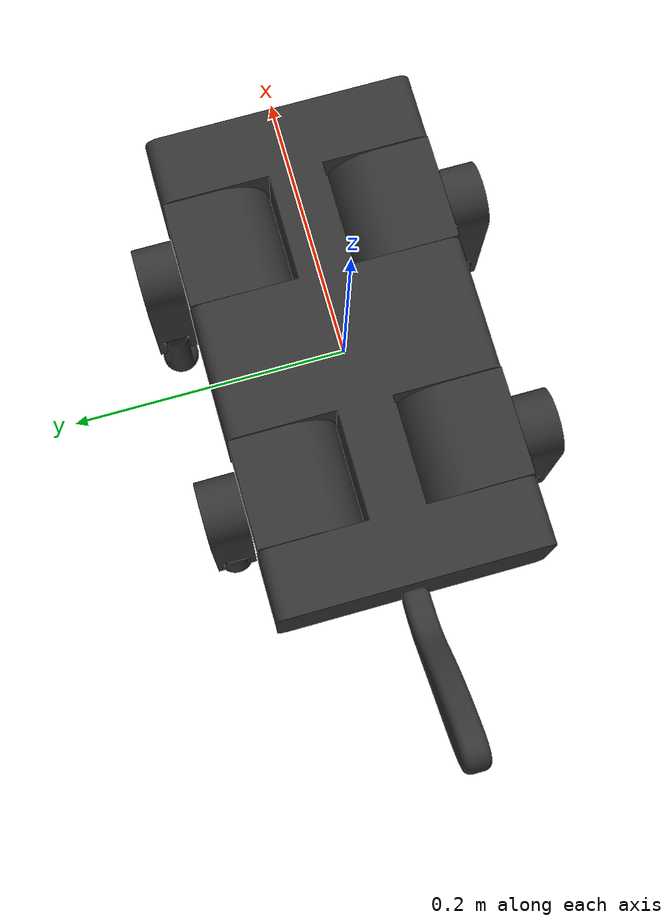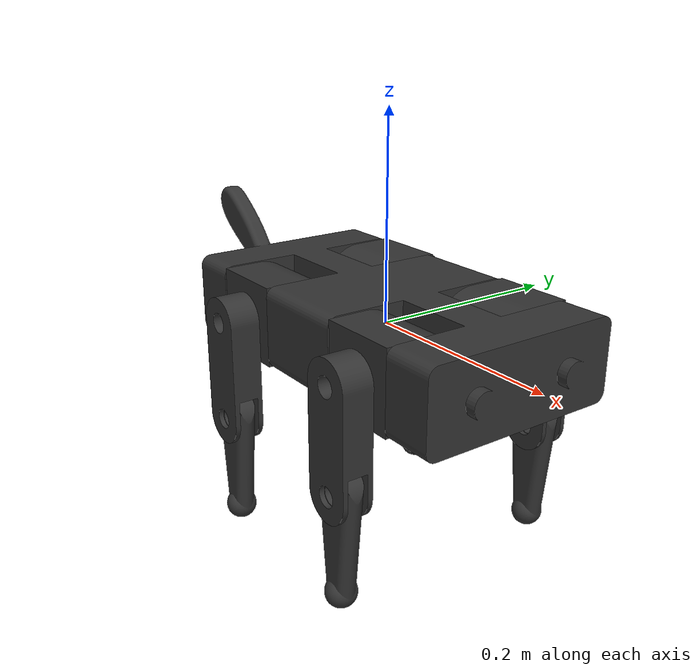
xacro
<?xml version="1.0" ?>
<robot name="quad_robot" xmlns:xacro="http://www.ros.org/wiki/xacro">

<xacro:include filename="$(find quad_robot_description)/urdf/materials.xacro" />
<xacro:include filename="$(find quad_robot_description)/urdf/quad_robot.trans" />
<xacro:include filename="$(find quad_robot_description)/urdf/quad_robot.gazebo" />
<xacro:include filename="$(find quad_robot_description)/urdf/quad_robot_description.xacro" />
<xacro:quad_robot_description main_color="grey" sub_color="white" />

<!-- Import MantaRobot ros2_control description -->
<!-- TODO effort controller なら滑らずにモデルを使用できる -->
<xacro:include filename="$(find quad_robot_description)/ros2_control/quad_robot_ros2_effort_control.xacro" />
<xacro:quad_robot_ros2_control name="quad_robot" />

</robot>

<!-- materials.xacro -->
<robot name="mb3" xmlns:xacro="http://www.ros.org/wiki/xacro" >

  <material name="silver">
    <color rgba="0.700 0.700 0.700 1.000"/>
  </material>

  <material name="black">
    <color rgba="0.0 0.0 0.0 1.0"/>
  </material>

  <material name="blue">
    <color rgba="0.0 0.0 0.8 1.0"/>
  </material>

  <material name="skyblue">
    <color rgba="${0/255} ${226/255} ${232/255} 1.0"/>
  </material>

  <material name="green">
    <color rgba="0.0 0.8 0.0 1.0"/>
  </material>

  <material name="grey">
    <color rgba="0.2 0.2 0.2 1.0"/>
  </material>

  <material name="orange">
    <color rgba="${255/255} ${108/255} ${10/255} 1.0"/>
  </material>

  <material name="brown">
    <color rgba="${222/255} ${207/255} ${195/255} 1.0"/>
  </material>

  <material name="red">
    <color rgba="0.8 0.0 0.0 1.0"/>
  </material>

  <material name="yellow">
    <color rgba="1.0 1.0 0.0 1.0"/>
  </material>

  <material name="white">
    <color rgba="1.0 1.0 1.0 1.0"/>
  </material>

</robot>

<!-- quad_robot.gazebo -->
<robot name="quad_robot" xmlns:xacro="http://www.ros.org/wiki/xacro" >

<xacro:property name="body_color" value="Gazebo/FlatBlack" />
<xacro:property name="sub_color" value="Gazebo/Silver" />

<!-- ros_control plugin -->
<gazebo>
  <plugin filename="libgazebo_ros2_control.so" name="gazebo_ros2_control">
    <robot_param>robot_description</robot_param>
    <robot_param_node>robot_state_publisher</robot_param_node>
    <parameters>$(find quad_robot_gazebo)/config/quad_robot_effort_controller.yaml</parameters>
  </plugin>
</gazebo>

<gazebo>
  <plugin name="p3d_base_controller" filename="libgazebo_ros_p3d.so">
    <ros>
      <argument>odom:=odom/ground_truth</argument>
    </ros>

    <body_name>base_link</body_name>
    <frame_name>world</frame_name>
    <update_rate>10.0</update_rate>
    <xyz_offset>0 0 0</xyz_offset>
    <rpy_offset>0 0 0</rpy_offset>
    <gaussian_noise>0.01</gaussian_noise>
  </plugin>
</gazebo>

<gazebo reference="base_link">
  <material>${body_color}</material>
</gazebo>

<gazebo reference="rf_hip_link">
  <material>${body_color}</material>
</gazebo>

<gazebo reference="rh_hip_link">
  <material>${body_color}</material>
</gazebo>

<gazebo reference="lf_hip_link">
  <material>${body_color}</material>
</gazebo>

<gazebo reference="lh_hip_link">
  <material>${body_color}</material>
</gazebo>

<gazebo reference="rf_upper_leg_link">
  <material>${body_color}</material>
</gazebo>

<gazebo reference="rh_upper_leg_link">
  <material>${body_color}</material>
</gazebo>

<gazebo reference="lf_upper_leg_link">
  <material>${body_color}</material>
</gazebo>

<gazebo reference="lh_upper_leg_link">
  <material>${body_color}</material>
</gazebo>

<gazebo reference="rf_lower_leg_link">
  <material>${body_color}</material>
  <!-- mu上げると滑る、下げると止まる -->
  <!-- kp上げると滑る -->
  <!-- kd上げると地面に練り込む -->
  <!-- mindepth 上げると沈む -->
  <kp>1e5</kp>
  <kd>100</kd>
  <mu1>0.8</mu1>
  <mu2>0.8</mu2>
  <fdir1>1 0 0</fdir1>
  <maxVel>0.1</maxVel>
  <minDepth>0.001</minDepth>
</gazebo>

<gazebo reference="rh_lower_leg_link">
  <material>${body_color}</material>
  <kp>1e5</kp>
  <kd>100</kd>
  <mu1>0.8</mu1>
  <mu2>0.8</mu2>
  <fdir1>1 0 0</fdir1>
  <maxVel>0.1</maxVel>
  <minDepth>0.001</minDepth>
</gazebo>

<gazebo reference="lf_lower_leg_link">
  <material>${body_color}</material>
  <kp>1e5</kp>
  <kd>100</kd>
  <mu1>0.8</mu1>
  <mu2>0.8</mu2>
  <fdir1>1 0 0</fdir1>
  <maxVel>0.1</maxVel>
  <minDepth>0.001</minDepth>
</gazebo>

<gazebo reference="lh_lower_leg_link">
  <material>${body_color}</material>
  <kp>1e5</kp>
  <kd>100</kd>
  <mu1>0.8</mu1>
  <mu2>0.8</mu2>
  <fdir1>1 0 0</fdir1>
  <maxVel>0.1</maxVel>
  <minDepth>0.001</minDepth>
</gazebo>

</robot>

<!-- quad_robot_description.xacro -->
<robot name="quad_robot" xmlns:xacro="http://www.ros.org/wiki/xacro">

<!-- TODO inertiaのoriginとか触ると、場所変わるのでNG -->

<xacro:include filename="$(find champ_description)/urdf/properties.urdf.xacro" />

<xacro:macro name="quad_robot_description" params="main_color sub_color">
<xacro:property name="lower_leg_to_foot_distance" value="0.11" />

  <!-- TODO add imu_link -->
  <link name="imu_link">
    <inertial>
      <mass value="0.001"/>
      <origin rpy="0 0 0" xyz="0 0 0"/>
      <inertia ixx="1e-09" ixy="0.0" ixz="0.0" iyy="1e-09" iyz="0.0" izz="1e-09"/>
    </inertial>
  </link>
  <joint name="imu_joint" type="fixed">
    <parent link="base_link"/>
    <child link="imu_link"/>
  </joint>

  <!-- TODO delete base_link inertial tag -->
  <link name="base_link">
    <visual>
      <origin xyz="0 0 0" rpy="0 0 0"/>
      <geometry>
        <mesh filename="file://$(find quad_robot_description)/meshes/base_link.stl" scale="0.001 0.001 0.001"/>
      </geometry>
      <material name="${main_color}"/>
    </visual>
    <collision>
      <origin xyz="0 0 0" rpy="0 0 0"/>
      <geometry>
        <mesh filename="file://$(find quad_robot_description)/meshes/base_link.stl" scale="0.001 0.001 0.001"/>
      </geometry>
    </collision>
  </link>
  <!-- TODO divide base_link into inertia link -->
  <link name="base_inertia">
    <inertial>
      <origin xyz="0 0 0"/>
      <mass value="3.949377918410707"/>
      <inertia ixx="0.013212" iyy="0.055202" izz="0.063976" ixy="0.0" iyz="0.0" ixz="0.0"/>
    </inertial>
  </link>
  <joint name="base_link_to_base_inertia" type="fixed">
    <parent link="base_link"/>
    <child link="base_inertia"/>
    <origin rpy="0 0 0" xyz="0 0 0"/>
  </joint>

  <!-- TODO add foot link -->
  <link name="rf_foot_link" />
  <joint name="rf_foot_joint" type="fixed">
    <parent link="rf_lower_leg_link" />
    <child link="rf_foot_link" />
    <origin xyz="0 0 -${lower_leg_to_foot_distance}" rpy="0 0 0" />
  </joint>
  <link name="rh_foot_link" />
  <joint name="rh_foot_joint" type="fixed">
    <parent link="rh_lower_leg_link" />
    <child link="rh_foot_link" />
    <origin xyz="0 0 -${lower_leg_to_foot_distance}" rpy="0 0 0" />
  </joint>
  <link name="lf_foot_link" />
  <joint name="lf_foot_joint" type="fixed">
    <parent link="lf_lower_leg_link" />
    <child link="lf_foot_link" />
    <origin xyz="0 0 -${lower_leg_to_foot_distance}" rpy="0 0 0" />
  </joint>
  <link name="lh_foot_link" />
  <joint name="lh_foot_joint" type="fixed">
    <parent link="lh_lower_leg_link" />
    <child link="lh_foot_link" />
    <origin xyz="0 0 -${lower_leg_to_foot_distance}" rpy="0 0 0" />
  </joint>

<link name="rf_hip_link">
  <inertial>
    <origin xyz="0.04000000000000005 -0.0033883605352012514 1.815433672304822e-17" rpy="0 0 0"/>
    <mass value="0.418842162082933"/>
    <inertia ixx="0.000398" iyy="0.000427" izz="0.000416" ixy="0.0" iyz="-0.0" ixz="-0.0"/>
  </inertial>
  <visual>
    <origin xyz="-0.05 0.06 -0.0" rpy="0 0 0"/>
    <geometry>
      <mesh filename="file://$(find quad_robot_description)/meshes/rf_hip_link.stl" scale="0.001 0.001 0.001"/>
    </geometry>
    <material name="${main_color}"/>
  </visual>
  <collision>
    <origin xyz="-0.05 0.06 -0.0" rpy="0 0 0"/>
    <geometry>
      <mesh filename="file://$(find quad_robot_description)/meshes/rf_hip_link.stl" scale="0.001 0.001 0.001"/>
    </geometry>
  </collision>
</link>

<link name="rh_hip_link">
  <inertial>
    <origin xyz="-0.039999999999999966 -0.0033883605352011126 -2.885909027996524e-18" rpy="0 0 0"/>
    <mass value="0.418842162082933"/>
    <inertia ixx="0.000398" iyy="0.000427" izz="0.000416" ixy="0.0" iyz="0.0" ixz="0.0"/>
  </inertial>
  <visual>
    <origin xyz="0.05 0.06 -0.0" rpy="0 0 0"/>
    <geometry>
      <mesh filename="file://$(find quad_robot_description)/meshes/rh_hip_link.stl" scale="0.001 0.001 0.001"/>
    </geometry>
    <material name="${main_color}"/>
  </visual>
  <collision>
    <origin xyz="0.05 0.06 -0.0" rpy="0 0 0"/>
    <geometry>
      <mesh filename="file://$(find quad_robot_description)/meshes/rh_hip_link.stl" scale="0.001 0.001 0.001"/>
    </geometry>
  </collision>
</link>

<link name="lf_hip_link">
  <inertial>
    <origin xyz="0.04000000000012972 0.0033883605352012652 8.881784197001253e-18" rpy="0 0 0"/>
    <mass value="0.41884216208293407"/>
    <inertia ixx="0.000398" iyy="0.000427" izz="0.000416" ixy="0.0" iyz="-0.0" ixz="0.0"/>
  </inertial>
  <visual>
    <origin xyz="-0.05 -0.06 -0.0" rpy="0 0 0"/>
    <geometry>
      <mesh filename="file://$(find quad_robot_description)/meshes/lf_hip_link.stl" scale="0.001 0.001 0.001"/>
    </geometry>
    <material name="${main_color}"/>
  </visual>
  <collision>
    <origin xyz="-0.05 -0.06 -0.0" rpy="0 0 0"/>
    <geometry>
      <mesh filename="file://$(find quad_robot_description)/meshes/lf_hip_link.stl" scale="0.001 0.001 0.001"/>
    </geometry>
  </collision>
</link>

<link name="lh_hip_link">
  <inertial>
    <origin xyz="-0.04000000000000006 0.003388360535201196 9.766968170619275e-18" rpy="0 0 0"/>
    <mass value="0.418842162082933"/>
    <inertia ixx="0.000398" iyy="0.000427" izz="0.000416" ixy="0.0" iyz="-0.0" ixz="0.0"/>
  </inertial>
  <visual>
    <origin xyz="0.05 -0.06 -0.0" rpy="0 0 0"/>
    <geometry>
      <mesh filename="file://$(find quad_robot_description)/meshes/lh_hip_link.stl" scale="0.001 0.001 0.001"/>
    </geometry>
    <material name="${main_color}"/>
  </visual>
  <collision>
    <origin xyz="0.05 -0.06 -0.0" rpy="0 0 0"/>
    <geometry>
      <mesh filename="file://$(find quad_robot_description)/meshes/lh_hip_link.stl" scale="0.001 0.001 0.001"/>
    </geometry>
  </collision>
</link>

<link name="rf_upper_leg_link">
  <inertial>
    <origin xyz="-8.652800698172314e-14 -0.01599999999999989 -0.038046278936919406" rpy="0 0 0"/>
    <mass value="0.16080574980884343"/>
    <inertia ixx="0.000206" iyy="0.000226" izz="4.8e-05" ixy="-0.0" iyz="0.0" ixz="0.0"/>
  </inertial>
  <visual>
    <origin xyz="-0.09 0.099 -0.0" rpy="0 0 0"/>
    <geometry>
      <mesh filename="file://$(find quad_robot_description)/meshes/rf_upper_leg_link.stl" scale="0.001 0.001 0.001"/>
    </geometry>
    <material name="${main_color}"/>
  </visual>
  <collision>
    <origin xyz="-0.09 0.099 -0.0" rpy="0 0 0"/>
    <geometry>
      <mesh filename="file://$(find quad_robot_description)/meshes/rf_upper_leg_link.stl" scale="0.001 0.001 0.001"/>
    </geometry>
  </collision>
</link>

<link name="rh_upper_leg_link">
  <inertial>
    <origin xyz="-8.662515149637784e-14 -0.015999999999999626 -0.03804627893691973" rpy="0 0 0"/>
    <mass value="0.16080574980884343"/>
    <inertia ixx="0.000206" iyy="0.000226" izz="4.8e-05" ixy="-0.0" iyz="0.0" ixz="0.0"/>
  </inertial>
  <visual>
    <origin xyz="0.09 0.099 0.0" rpy="0 0 0"/>
    <geometry>
      <mesh filename="file://$(find quad_robot_description)/meshes/rh_upper_leg_link.stl" scale="0.001 0.001 0.001"/>
    </geometry>
    <material name="${main_color}"/>
  </visual>
  <collision>
    <origin xyz="0.09 0.099 0.0" rpy="0 0 0"/>
    <geometry>
      <mesh filename="file://$(find quad_robot_description)/meshes/rh_upper_leg_link.stl" scale="0.001 0.001 0.001"/>
    </geometry>
  </collision>
</link>

<link name="lf_upper_leg_link">
  <inertial>
    <origin xyz="-8.66806626476091e-14 0.016000000000000167 -0.03804627893691959" rpy="0 0 0"/>
    <mass value="0.16080574980884343"/>
    <inertia ixx="0.000206" iyy="0.000226" izz="4.8e-05" ixy="0.0" iyz="0.0" ixz="0.0"/>
  </inertial>
  <visual>
    <origin xyz="-0.09 -0.099 0.0" rpy="0 0 0"/>
    <geometry>
      <mesh filename="file://$(find quad_robot_description)/meshes/lf_upper_leg_link.stl" scale="0.001 0.001 0.001"/>
    </geometry>
    <material name="${main_color}"/>
  </visual>
  <collision>
    <origin xyz="-0.09 -0.099 0.0" rpy="0 0 0"/>
    <geometry>
      <mesh filename="file://$(find quad_robot_description)/meshes/lf_upper_leg_link.stl" scale="0.001 0.001 0.001"/>
    </geometry>
  </collision>
</link>

<link name="lh_upper_leg_link">
  <inertial>
    <origin xyz="-8.67778071622638e-14 0.015999999999999848 -0.038046278936919455" rpy="0 0 0"/>
    <mass value="0.16080574980884343"/>
    <inertia ixx="0.000206" iyy="0.000226" izz="4.8e-05" ixy="-0.0" iyz="0.0" ixz="0.0"/>
  </inertial>
  <visual>
    <origin xyz="0.09 -0.099 -0.0" rpy="0 0 0"/>
    <geometry>
      <mesh filename="file://$(find quad_robot_description)/meshes/lh_upper_leg_link.stl" scale="0.001 0.001 0.001"/>
    </geometry>
    <material name="${main_color}"/>
  </visual>
  <collision>
    <origin xyz="0.09 -0.099 -0.0" rpy="0 0 0"/>
    <geometry>
      <mesh filename="file://$(find quad_robot_description)/meshes/lh_upper_leg_link.stl" scale="0.001 0.001 0.001"/>
    </geometry>
  </collision>
</link>

<link name="rf_lower_leg_link">
  <inertial>
    <origin xyz="1.16579398690142e-07 -0.010000000167776815 -0.04255385923514293" rpy="0 0 0"/>
    <mass value="0.09412944960610932"/>
    <inertia ixx="0.00014" iyy="0.000149" izz="1.5e-05" ixy="0.0" iyz="0.0" ixz="-0.0"/>
  </inertial>
  <visual>
    <origin xyz="-0.09 0.105 0.1" rpy="0 0 0"/>
    <geometry>
      <mesh filename="file://$(find quad_robot_description)/meshes/rf_lower_leg_link.stl" scale="0.001 0.001 0.001"/>
    </geometry>
    <material name="${main_color}"/>
  </visual>
  <collision>
    <origin xyz="-0.09 0.105 0.1" rpy="0 0 0"/>
    <geometry>
      <mesh filename="file://$(find quad_robot_description)/meshes/rf_lower_leg_link.stl" scale="0.001 0.001 0.001"/>
    </geometry>
  </collision>
</link>

<link name="rh_lower_leg_link">
  <inertial>
    <origin xyz="1.1657939859299749e-07 -0.01000000016777669 -0.042553859235143515" rpy="0 0 0"/>
    <mass value="0.09412944960610932"/>
    <inertia ixx="0.00014" iyy="0.000149" izz="1.5e-05" ixy="0.0" iyz="0.0" ixz="-0.0"/>
  </inertial>
  <visual>
    <origin xyz="0.09 0.105 0.1" rpy="0 0 0"/>
    <geometry>
      <mesh filename="file://$(find quad_robot_description)/meshes/rh_lower_leg_link.stl" scale="0.001 0.001 0.001"/>
    </geometry>
    <material name="${main_color}"/>
  </visual>
  <collision>
    <origin xyz="0.09 0.105 0.1" rpy="0 0 0"/>
    <geometry>
      <mesh filename="file://$(find quad_robot_description)/meshes/rh_lower_leg_link.stl" scale="0.001 0.001 0.001"/>
    </geometry>
  </collision>
</link>

<link name="lf_lower_leg_link">
  <inertial>
    <origin xyz="1.1657939852360855e-07 0.009999999832223147 -0.04255385923514313" rpy="0 0 0"/>
    <mass value="0.09412944960610932"/>
    <inertia ixx="0.00014" iyy="0.000149" izz="1.5e-05" ixy="0.0" iyz="0.0" ixz="-0.0"/>
  </inertial>
  <visual>
    <origin xyz="-0.09 -0.105 0.1" rpy="0 0 0"/>
    <geometry>
      <mesh filename="file://$(find quad_robot_description)/meshes/lf_lower_leg_link.stl" scale="0.001 0.001 0.001"/>
    </geometry>
    <material name="${main_color}"/>
  </visual>
  <collision>
    <origin xyz="-0.09 -0.105 0.1" rpy="0 0 0"/>
    <geometry>
      <mesh filename="file://$(find quad_robot_description)/meshes/lf_lower_leg_link.stl" scale="0.001 0.001 0.001"/>
    </geometry>
  </collision>
</link>

<link name="lh_lower_leg_link">
  <inertial>
    <origin xyz="1.1657939841258624e-07 0.009999999832222856 -0.04255385923514293" rpy="0 0 0"/>
    <mass value="0.09412944960610932"/>
    <inertia ixx="0.00014" iyy="0.000149" izz="1.5e-05" ixy="0.0" iyz="0.0" ixz="-0.0"/>
  </inertial>
  <visual>
    <origin xyz="0.09 -0.105 0.1" rpy="0 0 0"/>
    <geometry>
      <mesh filename="file://$(find quad_robot_description)/meshes/lh_lower_leg_link.stl" scale="0.001 0.001 0.001"/>
    </geometry>
    <material name="${main_color}"/>
  </visual>
  <collision>
    <origin xyz="0.09 -0.105 0.1" rpy="0 0 0"/>
    <geometry>
      <mesh filename="file://$(find quad_robot_description)/meshes/lh_lower_leg_link.stl" scale="0.001 0.001 0.001"/>
    </geometry>
  </collision>
</link>

<joint name="rf_hip_joint" type="revolute">
  <origin xyz="0.05 -0.06 0.0" rpy="0 0 0"/>
  <parent link="base_link"/>
  <child link="rf_hip_link"/>
  <axis xyz="-1.0 -0.0 0.0"/>
  <limit upper="1.570796" lower="-1.570796" effort="100" velocity="10"/>
  <dynamics damping="0.0" friction="10.0"/>
</joint>

<joint name="rh_hip_joint" type="revolute">
  <origin xyz="-0.05 -0.06 0.0" rpy="0 0 0"/>
  <parent link="base_link"/>
  <child link="rh_hip_link"/>
  <axis xyz="-1.0 0.0 0.0"/>
  <limit upper="1.570796" lower="-1.570796" effort="100" velocity="10"/>
  <dynamics damping="0.0" friction="10.0"/>
</joint>

<joint name="lf_hip_joint" type="revolute">
  <origin xyz="0.05 0.06 0.0" rpy="0 0 0"/>
  <parent link="base_link"/>
  <child link="lf_hip_link"/>
  <axis xyz="-1.0 0.0 0.0"/>
  <limit upper="1.570796" lower="-1.570796" effort="100" velocity="10"/>
  <dynamics damping="0.0" friction="10.0"/>
</joint>

<joint name="lh_hip_joint" type="revolute">
  <origin xyz="-0.05 0.06 0.0" rpy="0 0 0"/>
  <parent link="base_link"/>
  <child link="lh_hip_link"/>
  <axis xyz="-1.0 0.0 0.0"/>
  <limit upper="1.570796" lower="-1.570796" effort="100" velocity="10"/>
  <dynamics damping="0.0" friction="10.0"/>
</joint>

<joint name="rf_upper_leg_joint" type="revolute">
  <origin xyz="0.04 -0.039 0.0" rpy="0 0 0"/>
  <parent link="rf_hip_link"/>
  <child link="rf_upper_leg_link"/>
  <axis xyz="0.0 1.0 -0.0"/>
  <limit upper="1.047198" lower="-1.047198" effort="100" velocity="10"/>
  <dynamics damping="0.0" friction="10.0"/>
</joint>

<joint name="rh_upper_leg_joint" type="revolute">
  <origin xyz="-0.04 -0.039 -0.0" rpy="0 0 0"/>
  <parent link="rh_hip_link"/>
  <child link="rh_upper_leg_link"/>
  <axis xyz="0.0 1.0 0.0"/>
  <limit upper="1.047198" lower="-1.047198" effort="100" velocity="10"/>
  <dynamics damping="0.0" friction="10.0"/>
</joint>

<joint name="lf_upper_leg_joint" type="revolute">
  <origin xyz="0.04 0.039 -0.0" rpy="0 0 0"/>
  <parent link="lf_hip_link"/>
  <child link="lf_upper_leg_link"/>
  <axis xyz="0.0 1.0 -0.0"/>
  <limit upper="1.047198" lower="-1.047198" effort="100" velocity="10"/>
  <dynamics damping="0.0" friction="10.0"/>
</joint>

<joint name="lh_upper_leg_joint" type="revolute">
  <origin xyz="-0.04 0.039 0.0" rpy="0 0 0"/>
  <parent link="lh_hip_link"/>
  <child link="lh_upper_leg_link"/>
  <axis xyz="0.0 1.0 0.0"/>
  <limit upper="1.047198" lower="-1.047198" effort="100" velocity="10"/>
  <dynamics damping="0.0" friction="10.0"/>
</joint>

<joint name="rf_lower_leg_joint" type="revolute">
  <origin xyz="0.0 -0.006 -0.1" rpy="0 0 0"/>
  <parent link="rf_upper_leg_link"/>
  <child link="rf_lower_leg_link"/>
  <axis xyz="-0.0 1.0 -0.0"/>
  <limit upper="1.047198" lower="-1.047198" effort="100" velocity="10"/>
  <dynamics damping="0.0" friction="10.0"/>
</joint>

<joint name="rh_lower_leg_joint" type="revolute">
  <origin xyz="0.0 -0.006 -0.1" rpy="0 0 0"/>
  <parent link="rh_upper_leg_link"/>
  <child link="rh_lower_leg_link"/>
  <axis xyz="-0.0 1.0 0.0"/>
  <limit upper="1.047198" lower="-1.047198" effort="100" velocity="10"/>
  <dynamics damping="0.0" friction="10.0"/>
</joint>

<joint name="lf_lower_leg_joint" type="revolute">
  <origin xyz="0.0 0.006 -0.1" rpy="0 0 0"/>
  <parent link="lf_upper_leg_link"/>
  <child link="lf_lower_leg_link"/>
  <axis xyz="0.0 1.0 -0.0"/>
  <limit upper="1.047198" lower="-1.047198" effort="100" velocity="10"/>
  <dynamics damping="0.0" friction="10.0"/>
</joint>

<joint name="lh_lower_leg_joint" type="revolute">
  <origin xyz="0.0 0.006 -0.1" rpy="0 0 0"/>
  <parent link="lh_upper_leg_link"/>
  <child link="lh_lower_leg_link"/>
  <axis xyz="-0.0 1.0 0.0"/>
  <limit upper="1.047198" lower="-1.047198" effort="100" velocity="10"/>
  <dynamics damping="0.0" friction="10.0"/>
</joint>
</xacro:macro>
</robot>
